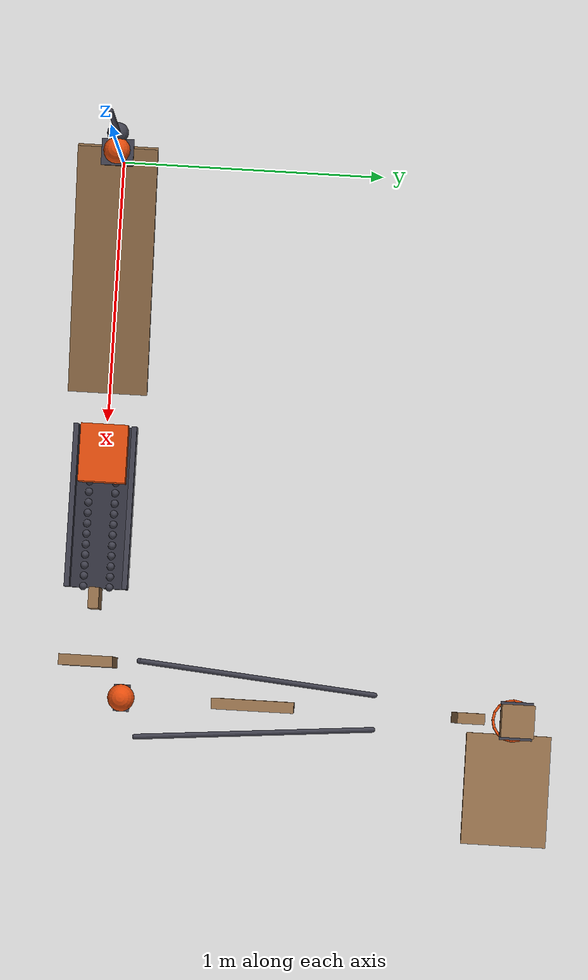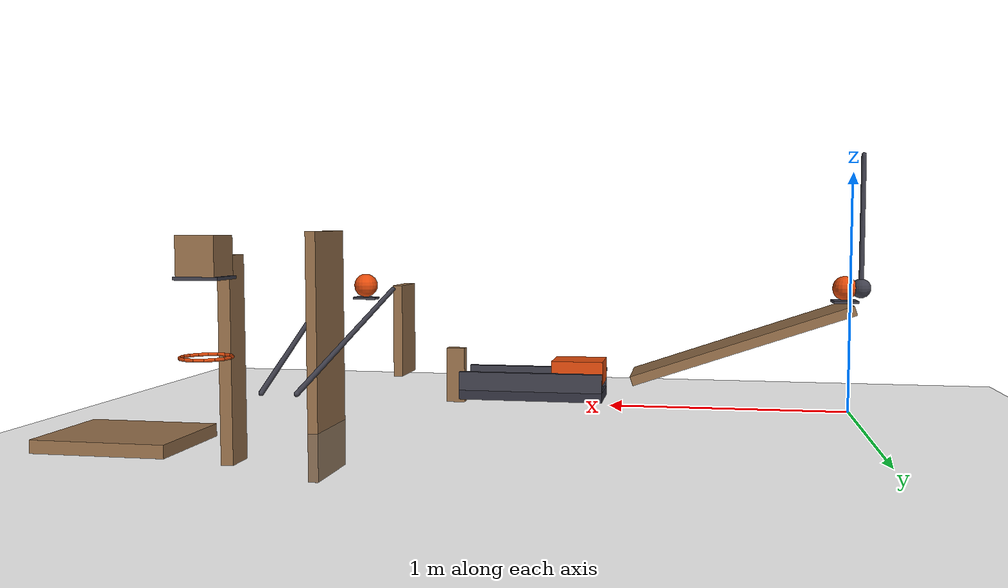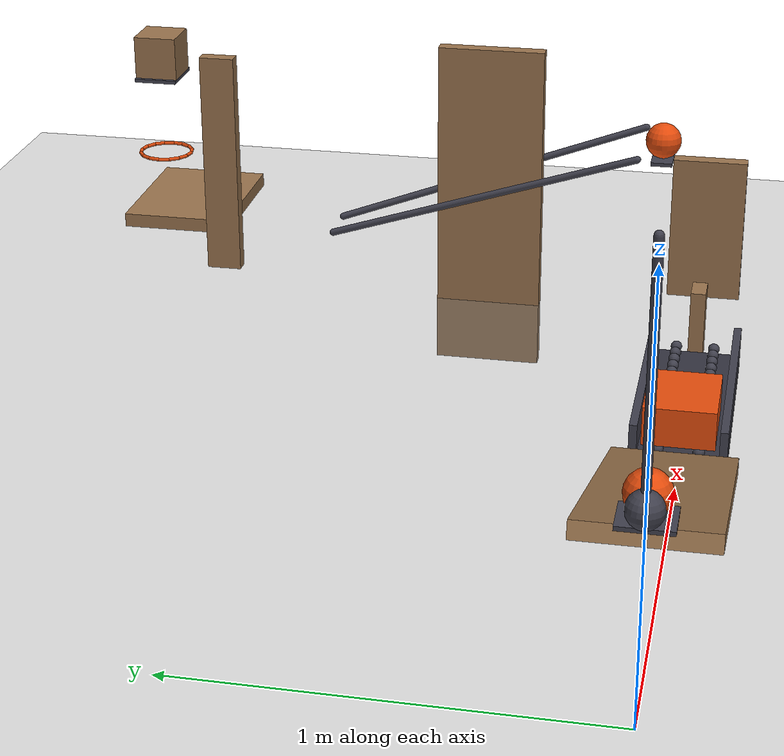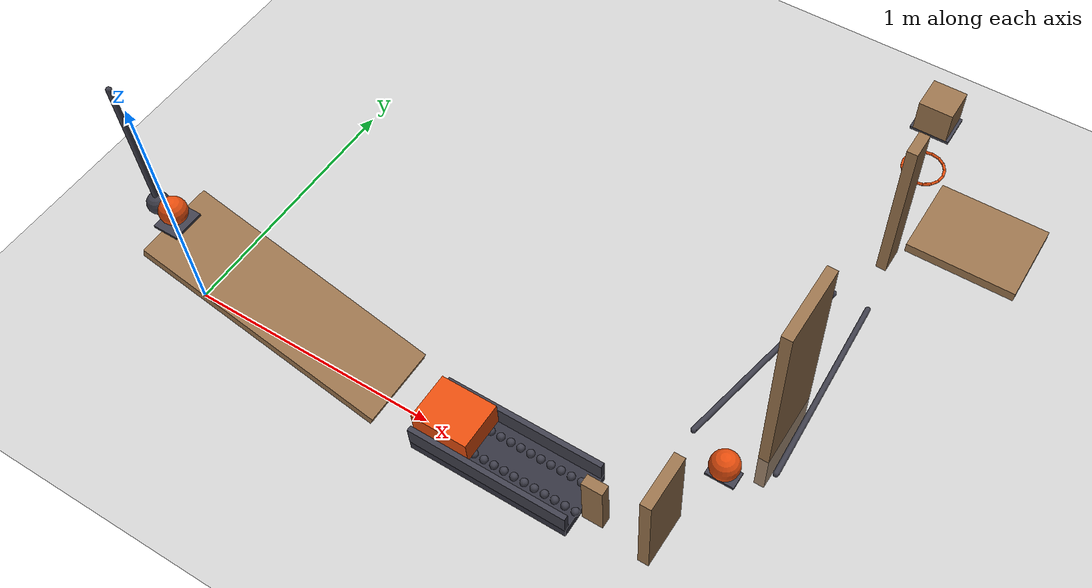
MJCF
<mujoco model="revised_gravity_chain_with_crosswise_second_ramp">
  <compiler angle="radian"/>
  <option timestep="0.002"/>
  <worldbody>
    <geom name="floor" type="plane" size="12 12 0.1" friction="0.68 0.005 0.002"/>
    <body name="ramp1">
      <geom name="ramp1" type="box" pos="0.44912 0 0.285735" size="0.474999 0.15 0.02" euler="0 0.331614 0" friction="0.68 0 0" solref="0.01 1" rgba="0.6 0.45 0.3 1"/>
    </body>
    <body name="ball1 launch shelf">
      <geom name="ball1 launch shelf" type="box" pos="0.025 0 0.467" size="0.05 0.06 0.005" friction="0.68 0 0" solref="0.01 1" rgba="0.25 0.25 0.3 1"/>
    </body>
    <body name="ball1" pos="0.025 0 0.522">
      <freejoint/>
      <geom name="ball1" type="sphere" pos="0 0 0" size="0.05" mass="0.2" condim="6" friction="0.68 0 0" solref="0.01 1" rgba="0.9 0.3 0.05 1"/>
    </body>
    <body name="pendulum1" pos="-0.04 0 1.072">
      <joint name="pendulum1_hinge" type="hinge" pos="0 0 0" axis="0 1 0" limited="true" range="-1.13446 1.0472" damping="0.04"/>
      <geom name="pendulum1" type="sphere" pos="0 0 -0.55" size="0.04" mass="0.35" friction="0.68 0 0" solref="0.01 1" rgba="0.25 0.25 0.3 1"/>
      <geom name="pendulum rod" type="capsule" size="0.01" fromto="0 0 0 0 0 -0.51" mass="0.05" friction="0.68 0 0" solref="0.01 1" rgba="0.25 0.25 0.3 1"/>
    </body>
    <body name="cart track">
      <geom name="cart track" type="box" pos="1.33475 0 0.05" size="0.31 0.12 0.02" friction="0.68 0 0" solref="0.01 1" rgba="0.2 0.2 0.25 1"/>
    </body>
    <body name="cart left guide">
      <geom name="cart left guide" type="box" pos="1.33475 0.11 0.11" size="0.31 0.01 0.04" friction="0.68 0 0" solref="0.01 1" rgba="0.25 0.25 0.3 1"/>
    </body>
    <body name="cart right guide">
      <geom name="cart right guide" type="box" pos="1.33475 -0.11 0.11" size="0.31 0.01 0.04" friction="0.68 0 0" solref="0.01 1" rgba="0.25 0.25 0.3 1"/>
    </body>
    <body name="left roller1" pos="1.03975 0.05 0.085">
      <freejoint/>
      <geom name="left roller1" type="sphere" pos="0 0 0" size="0.015" mass="0.001" condim="6" friction="0.68 0 0" solref="0.01 1" rgba="0.25 0.25 0.3 1"/>
    </body>
    <body name="left roller2" pos="1.07975 0.05 0.085">
      <freejoint/>
      <geom name="left roller2" type="sphere" pos="0 0 0" size="0.015" mass="0.001" condim="6" friction="0.68 0 0" solref="0.01 1" rgba="0.25 0.25 0.3 1"/>
    </body>
    <body name="left roller3" pos="1.11975 0.05 0.085">
      <freejoint/>
      <geom name="left roller3" type="sphere" pos="0 0 0" size="0.015" mass="0.001" condim="6" friction="0.68 0 0" solref="0.01 1" rgba="0.25 0.25 0.3 1"/>
    </body>
    <body name="left roller4" pos="1.15975 0.05 0.085">
      <freejoint/>
      <geom name="left roller4" type="sphere" pos="0 0 0" size="0.015" mass="0.001" condim="6" friction="0.68 0 0" solref="0.01 1" rgba="0.25 0.25 0.3 1"/>
    </body>
    <body name="left roller5" pos="1.19975 0.05 0.085">
      <freejoint/>
      <geom name="left roller5" type="sphere" pos="0 0 0" size="0.015" mass="0.001" condim="6" friction="0.68 0 0" solref="0.01 1" rgba="0.25 0.25 0.3 1"/>
    </body>
    <body name="left roller6" pos="1.23975 0.05 0.085">
      <freejoint/>
      <geom name="left roller6" type="sphere" pos="0 0 0" size="0.015" mass="0.001" condim="6" friction="0.68 0 0" solref="0.01 1" rgba="0.25 0.25 0.3 1"/>
    </body>
    <body name="left roller7" pos="1.27975 0.05 0.085">
      <freejoint/>
      <geom name="left roller7" type="sphere" pos="0 0 0" size="0.015" mass="0.001" condim="6" friction="0.68 0 0" solref="0.01 1" rgba="0.25 0.25 0.3 1"/>
    </body>
    <body name="left roller8" pos="1.31975 0.05 0.085">
      <freejoint/>
      <geom name="left roller8" type="sphere" pos="0 0 0" size="0.015" mass="0.001" condim="6" friction="0.68 0 0" solref="0.01 1" rgba="0.25 0.25 0.3 1"/>
    </body>
    <body name="left roller9" pos="1.35975 0.05 0.085">
      <freejoint/>
      <geom name="left roller9" type="sphere" pos="0 0 0" size="0.015" mass="0.001" condim="6" friction="0.68 0 0" solref="0.01 1" rgba="0.25 0.25 0.3 1"/>
    </body>
    <body name="left roller10" pos="1.39975 0.05 0.085">
      <freejoint/>
      <geom name="left roller10" type="sphere" pos="0 0 0" size="0.015" mass="0.001" condim="6" friction="0.68 0 0" solref="0.01 1" rgba="0.25 0.25 0.3 1"/>
    </body>
    <body name="left roller11" pos="1.43975 0.05 0.085">
      <freejoint/>
      <geom name="left roller11" type="sphere" pos="0 0 0" size="0.015" mass="0.001" condim="6" friction="0.68 0 0" solref="0.01 1" rgba="0.25 0.25 0.3 1"/>
    </body>
    <body name="left roller12" pos="1.47975 0.05 0.085">
      <freejoint/>
      <geom name="left roller12" type="sphere" pos="0 0 0" size="0.015" mass="0.001" condim="6" friction="0.68 0 0" solref="0.01 1" rgba="0.25 0.25 0.3 1"/>
    </body>
    <body name="left roller13" pos="1.51975 0.05 0.085">
      <freejoint/>
      <geom name="left roller13" type="sphere" pos="0 0 0" size="0.015" mass="0.001" condim="6" friction="0.68 0 0" solref="0.01 1" rgba="0.25 0.25 0.3 1"/>
    </body>
    <body name="left roller14" pos="1.55975 0.05 0.085">
      <freejoint/>
      <geom name="left roller14" type="sphere" pos="0 0 0" size="0.015" mass="0.001" condim="6" friction="0.68 0 0" solref="0.01 1" rgba="0.25 0.25 0.3 1"/>
    </body>
    <body name="left roller15" pos="1.59975 0.05 0.085">
      <freejoint/>
      <geom name="left roller15" type="sphere" pos="0 0 0" size="0.015" mass="0.001" condim="6" friction="0.68 0 0" solref="0.01 1" rgba="0.25 0.25 0.3 1"/>
    </body>
    <body name="left roller16" pos="1.63975 0.05 0.085">
      <freejoint/>
      <geom name="left roller16" type="sphere" pos="0 0 0" size="0.015" mass="0.001" condim="6" friction="0.68 0 0" solref="0.01 1" rgba="0.25 0.25 0.3 1"/>
    </body>
    <body name="right roller1" pos="1.03975 -0.05 0.085">
      <freejoint/>
      <geom name="right roller1" type="sphere" pos="0 0 0" size="0.015" mass="0.001" condim="6" friction="0.68 0 0" solref="0.01 1" rgba="0.25 0.25 0.3 1"/>
    </body>
    <body name="right roller2" pos="1.07975 -0.05 0.085">
      <freejoint/>
      <geom name="right roller2" type="sphere" pos="0 0 0" size="0.015" mass="0.001" condim="6" friction="0.68 0 0" solref="0.01 1" rgba="0.25 0.25 0.3 1"/>
    </body>
    <body name="right roller3" pos="1.11975 -0.05 0.085">
      <freejoint/>
      <geom name="right roller3" type="sphere" pos="0 0 0" size="0.015" mass="0.001" condim="6" friction="0.68 0 0" solref="0.01 1" rgba="0.25 0.25 0.3 1"/>
    </body>
    <body name="right roller4" pos="1.15975 -0.05 0.085">
      <freejoint/>
      <geom name="right roller4" type="sphere" pos="0 0 0" size="0.015" mass="0.001" condim="6" friction="0.68 0 0" solref="0.01 1" rgba="0.25 0.25 0.3 1"/>
    </body>
    <body name="right roller5" pos="1.19975 -0.05 0.085">
      <freejoint/>
      <geom name="right roller5" type="sphere" pos="0 0 0" size="0.015" mass="0.001" condim="6" friction="0.68 0 0" solref="0.01 1" rgba="0.25 0.25 0.3 1"/>
    </body>
    <body name="right roller6" pos="1.23975 -0.05 0.085">
      <freejoint/>
      <geom name="right roller6" type="sphere" pos="0 0 0" size="0.015" mass="0.001" condim="6" friction="0.68 0 0" solref="0.01 1" rgba="0.25 0.25 0.3 1"/>
    </body>
    <body name="right roller7" pos="1.27975 -0.05 0.085">
      <freejoint/>
      <geom name="right roller7" type="sphere" pos="0 0 0" size="0.015" mass="0.001" condim="6" friction="0.68 0 0" solref="0.01 1" rgba="0.25 0.25 0.3 1"/>
    </body>
    <body name="right roller8" pos="1.31975 -0.05 0.085">
      <freejoint/>
      <geom name="right roller8" type="sphere" pos="0 0 0" size="0.015" mass="0.001" condim="6" friction="0.68 0 0" solref="0.01 1" rgba="0.25 0.25 0.3 1"/>
    </body>
    <body name="right roller9" pos="1.35975 -0.05 0.085">
      <freejoint/>
      <geom name="right roller9" type="sphere" pos="0 0 0" size="0.015" mass="0.001" condim="6" friction="0.68 0 0" solref="0.01 1" rgba="0.25 0.25 0.3 1"/>
    </body>
    <body name="right roller10" pos="1.39975 -0.05 0.085">
      <freejoint/>
      <geom name="right roller10" type="sphere" pos="0 0 0" size="0.015" mass="0.001" condim="6" friction="0.68 0 0" solref="0.01 1" rgba="0.25 0.25 0.3 1"/>
    </body>
    <body name="right roller11" pos="1.43975 -0.05 0.085">
      <freejoint/>
      <geom name="right roller11" type="sphere" pos="0 0 0" size="0.015" mass="0.001" condim="6" friction="0.68 0 0" solref="0.01 1" rgba="0.25 0.25 0.3 1"/>
    </body>
    <body name="right roller12" pos="1.47975 -0.05 0.085">
      <freejoint/>
      <geom name="right roller12" type="sphere" pos="0 0 0" size="0.015" mass="0.001" condim="6" friction="0.68 0 0" solref="0.01 1" rgba="0.25 0.25 0.3 1"/>
    </body>
    <body name="right roller13" pos="1.51975 -0.05 0.085">
      <freejoint/>
      <geom name="right roller13" type="sphere" pos="0 0 0" size="0.015" mass="0.001" condim="6" friction="0.68 0 0" solref="0.01 1" rgba="0.25 0.25 0.3 1"/>
    </body>
    <body name="right roller14" pos="1.55975 -0.05 0.085">
      <freejoint/>
      <geom name="right roller14" type="sphere" pos="0 0 0" size="0.015" mass="0.001" condim="6" friction="0.68 0 0" solref="0.01 1" rgba="0.25 0.25 0.3 1"/>
    </body>
    <body name="right roller15" pos="1.59975 -0.05 0.085">
      <freejoint/>
      <geom name="right roller15" type="sphere" pos="0 0 0" size="0.015" mass="0.001" condim="6" friction="0.68 0 0" solref="0.01 1" rgba="0.25 0.25 0.3 1"/>
    </body>
    <body name="right roller16" pos="1.63975 -0.05 0.085">
      <freejoint/>
      <geom name="right roller16" type="sphere" pos="0 0 0" size="0.015" mass="0.001" condim="6" friction="0.68 0 0" solref="0.01 1" rgba="0.25 0.25 0.3 1"/>
    </body>
    <body name="cart1" pos="1.13475 0 0.15">
      <freejoint/>
      <geom name="cart1" type="box" pos="0 0 0" size="0.11 0.09 0.05" mass="0.5" friction="0.68 0 0" solref="0.01 1" rgba="0.9 0.3 0.05 1"/>
    </body>
    <body name="domino1" pos="1.68475 0 0.12">
      <freejoint/>
      <geom name="domino1" type="box" pos="0 0 0" size="0.04 0.02 0.12" mass="0.25" friction="0.68 0 0" solref="0.01 1" rgba="0.6 0.45 0.3 1"/>
    </body>
    <body name="flap1" pos="1.92475 0 0.12">
      <joint name="flap1_hinge" type="hinge" pos="0 0 0" axis="0 1 0" limited="true" range="0 1.13446" damping="0.04"/>
      <geom name="flap1" type="box" pos="0 0 0.2" size="0.02 0.1 0.2" mass="0.3" friction="0.68 0 0" solref="0.01 1" rgba="0.6 0.45 0.3 1"/>
    </body>
    <body name="ramp2">
      <geom name="ramp2" type="box" pos="2.05475 0.62912 0.285735" size="0.474999 0.15 0.02" euler="0 1.5708 0" friction="0.68 0 0" solref="0.01 1" rgba="0.6 0.45 0.3 1"/>
    </body>
    <body name="ball2 launch shelf">
      <geom name="ball2 launch shelf" type="box" pos="2.05475 0.14 0.467" size="0.05 0.03 0.005" friction="0.68 0 0" solref="0.01 1" rgba="0.25 0.25 0.3 1"/>
    </body>
    <body name="ball2" pos="2.05475 0.14 0.522">
      <freejoint/>
      <geom name="ball2" type="sphere" pos="0 0 0" size="0.05" mass="0.2" condim="6" friction="0.68 0 0" solref="0.01 1" rgba="0.9 0.3 0.05 1"/>
    </body>
    <body name="ramp2 guide low x">
      <geom name="ramp2 guide low x" type="capsule" size="0.01" fromto="1.91475 0.2 0.51 1.98975 1.08 0.2" friction="0.68 0 0" solref="0.01 1" rgba="0.25 0.25 0.3 1"/>
    </body>
    <body name="ramp2 guide high x">
      <geom name="ramp2 guide high x" type="capsule" size="0.01" fromto="2.19475 0.2 0.51 2.11975 1.08 0.2" friction="0.68 0 0" solref="0.01 1" rgba="0.25 0.25 0.3 1"/>
    </body>
    <body name="seesaw1" pos="2.05475 1.4287 0.36567">
      <joint name="seesaw1_hinge" type="hinge" pos="0 0 0" axis="1 0 0" limited="true" range="0 0.698132" damping="0.04"/>
      <geom name="seesaw1" type="box" pos="0 0 0" size="0.325 0.05 0.02" euler="0 -1.5708 0" mass="0.55" friction="0.68 0 0" solref="0.01 1" rgba="0.6 0.45 0.3 1"/>
      <geom name="block seat" type="box" pos="0 0.16826 0.26154" size="0.07 0.06 0.005" mass="0.001" friction="0.68 0 0" solref="0.01 1" rgba="0.25 0.25 0.3 1"/>
    </body>
    <body name="block1" pos="2.05475 1.59696 0.69221">
      <freejoint/>
      <geom name="block1" type="box" pos="0 0 0" size="0.06 0.06 0.06" mass="0.35" friction="0.68 0 0" solref="0.01 1" rgba="0.6 0.45 0.3 1"/>
    </body>
    <body name="ring1">
      <geom name="ring1_00" type="capsule" size="0.005" fromto="2.12975 1.59696 0.39221 2.12404 1.62566 0.39221" friction="0.68 0 0" solref="0.01 1" rgba="0.9 0.3 0.05 1"/>
      <geom name="ring1_01" type="capsule" size="0.005" fromto="2.12404 1.62566 0.39221 2.10778 1.64999 0.39221" friction="0.68 0 0" solref="0.01 1" rgba="0.9 0.3 0.05 1"/>
      <geom name="ring1_02" type="capsule" size="0.005" fromto="2.10778 1.64999 0.39221 2.08345 1.66625 0.39221" friction="0.68 0 0" solref="0.01 1" rgba="0.9 0.3 0.05 1"/>
      <geom name="ring1_03" type="capsule" size="0.005" fromto="2.08345 1.66625 0.39221 2.05475 1.67196 0.39221" friction="0.68 0 0" solref="0.01 1" rgba="0.9 0.3 0.05 1"/>
      <geom name="ring1_04" type="capsule" size="0.005" fromto="2.05475 1.67196 0.39221 2.02605 1.66625 0.39221" friction="0.68 0 0" solref="0.01 1" rgba="0.9 0.3 0.05 1"/>
      <geom name="ring1_05" type="capsule" size="0.005" fromto="2.02605 1.66625 0.39221 2.00172 1.64999 0.39221" friction="0.68 0 0" solref="0.01 1" rgba="0.9 0.3 0.05 1"/>
      <geom name="ring1_06" type="capsule" size="0.005" fromto="2.00172 1.64999 0.39221 1.98546 1.62566 0.39221" friction="0.68 0 0" solref="0.01 1" rgba="0.9 0.3 0.05 1"/>
      <geom name="ring1_07" type="capsule" size="0.005" fromto="1.98546 1.62566 0.39221 1.97975 1.59696 0.39221" friction="0.68 0 0" solref="0.01 1" rgba="0.9 0.3 0.05 1"/>
      <geom name="ring1_08" type="capsule" size="0.005" fromto="1.97975 1.59696 0.39221 1.98546 1.56826 0.39221" friction="0.68 0 0" solref="0.01 1" rgba="0.9 0.3 0.05 1"/>
      <geom name="ring1_09" type="capsule" size="0.005" fromto="1.98546 1.56826 0.39221 2.00172 1.54393 0.39221" friction="0.68 0 0" solref="0.01 1" rgba="0.9 0.3 0.05 1"/>
      <geom name="ring1_10" type="capsule" size="0.005" fromto="2.00172 1.54393 0.39221 2.02605 1.52767 0.39221" friction="0.68 0 0" solref="0.01 1" rgba="0.9 0.3 0.05 1"/>
      <geom name="ring1_11" type="capsule" size="0.005" fromto="2.02605 1.52767 0.39221 2.05475 1.52196 0.39221" friction="0.68 0 0" solref="0.01 1" rgba="0.9 0.3 0.05 1"/>
      <geom name="ring1_12" type="capsule" size="0.005" fromto="2.05475 1.52196 0.39221 2.08345 1.52767 0.39221" friction="0.68 0 0" solref="0.01 1" rgba="0.9 0.3 0.05 1"/>
      <geom name="ring1_13" type="capsule" size="0.005" fromto="2.08345 1.52767 0.39221 2.10778 1.54393 0.39221" friction="0.68 0 0" solref="0.01 1" rgba="0.9 0.3 0.05 1"/>
      <geom name="ring1_14" type="capsule" size="0.005" fromto="2.10778 1.54393 0.39221 2.12404 1.56826 0.39221" friction="0.68 0 0" solref="0.01 1" rgba="0.9 0.3 0.05 1"/>
      <geom name="ring1_15" type="capsule" size="0.005" fromto="2.12404 1.56826 0.39221 2.12975 1.59696 0.39221" friction="0.68 0 0" solref="0.01 1" rgba="0.9 0.3 0.05 1"/>
    </body>
    <body name="door1" pos="2.31775 1.43696 0.14221">
      <joint name="door1_hinge" type="hinge" pos="0 0 0" axis="1 0 0" limited="true" range="0 1.13446" damping="0.04"/>
      <geom name="door1" type="box" pos="0 0.16 0" size="0.21 0.16 0.02" mass="0.45" friction="0.68 0 0" solref="0.01 1" rgba="0.6 0.45 0.3 1"/>
    </body>
  </worldbody>
  <keyframe>
    <key name="start" qpos="0.025 0 0.522 1 0 0 0 0.959931 1.03975 0.05 0.085 1 0 0 0 1.07975 0.05 0.085 1 0 0 0 1.11975 0.05 0.085 1 0 0 0 1.15975 0.05 0.085 1 0 0 0 1.19975 0.05 0.085 1 0 0 0 1.23975 0.05 0.085 1 0 0 0 1.27975 0.05 0.085 1 0 0 0 1.31975 0.05 0.085 1 0 0 0 1.35975 0.05 0.085 1 0 0 0 1.39975 0.05 0.085 1 0 0 0 1.43975 0.05 0.085 1 0 0 0 1.47975 0.05 0.085 1 0 0 0 1.51975 0.05 0.085 1 0 0 0 1.55975 0.05 0.085 1 0 0 0 1.59975 0.05 0.085 1 0 0 0 1.63975 0.05 0.085 1 0 0 0 1.03975 -0.05 0.085 1 0 0 0 1.07975 -0.05 0.085 1 0 0 0 1.11975 -0.05 0.085 1 0 0 0 1.15975 -0.05 0.085 1 0 0 0 1.19975 -0.05 0.085 1 0 0 0 1.23975 -0.05 0.085 1 0 0 0 1.27975 -0.05 0.085 1 0 0 0 1.31975 -0.05 0.085 1 0 0 0 1.35975 -0.05 0.085 1 0 0 0 1.39975 -0.05 0.085 1 0 0 0 1.43975 -0.05 0.085 1 0 0 0 1.47975 -0.05 0.085 1 0 0 0 1.51975 -0.05 0.085 1 0 0 0 1.55975 -0.05 0.085 1 0 0 0 1.59975 -0.05 0.085 1 0 0 0 1.63975 -0.05 0.085 1 0 0 0 1.13475 0 0.15 1 0 0 0 1.68475 0 0.12 1 0 0 0 0 2.05475 0.14 0.522 1 0 0 0 0 2.05475 1.59696 0.69221 1 0 0 0 0" qvel="0 0 0 0 0 0 0 0 0 0 0 0 0 0 0 0 0 0 0 0 0 0 0 0 0 0 0 0 0 0 0 0 0 0 0 0 0 0 0 0 0 0 0 0 0 0 0 0 0 0 0 0 0 0 0 0 0 0 0 0 0 0 0 0 0 0 0 0 0 0 0 0 0 0 0 0 0 0 0 0 0 0 0 0 0 0 0 0 0 0 0 0 0 0 0 0 0 0 0 0 0 0 0 0 0 0 0 0 0 0 0 0 0 0 0 0 0 0 0 0 0 0 0 0 0 0 0 0 0 0 0 0 0 0 0 0 0 0 0 0 0 0 0 0 0 0 0 0 0 0 0 0 0 0 0 0 0 0 0 0 0 0 0 0 0 0 0 0 0 0 0 0 0 0 0 0 0 0 0 0 0 0 0 0 0 0 0 0 0 0 0 0 0 0 0 0 0 0 0 0 0 0 0 0 0 0 0 0 0 0 0 0 0 0 0 0 0 0 0 0 0 0 0 0 0 0"/>
  </keyframe>
</mujoco>
